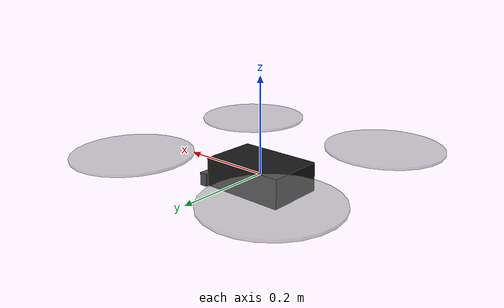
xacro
<?xml version="1.0"?>
<robot name="inv_quad" xmlns:xacro="http://www.ros.org/wiki/xacro">
  <xacro:include filename="$(find inv_description)/urdf/sensors.xacro"/>

  <xacro:property name="arm_length" value="0.25"/>
  <xacro:property name="prop_radius" value="0.12"/>
  <xacro:property name="body_mass" value="1.5"/>

  <link name="base_link">
    <visual>
      <geometry><box size="0.18 0.12 0.06"/></geometry>
      <material name="frame_black"><color rgba="0.1 0.1 0.1 1"/></material>
    </visual>
    <collision>
      <geometry><box size="0.55 0.55 0.12"/></geometry>
    </collision>
    <inertial>
      <mass value="${body_mass}"/>
      <inertia ixx="0.029" ixy="0" ixz="0" iyy="0.029" iyz="0" izz="0.055"/>
    </inertial>
  </link>

  <!-- Rotor discs, Quad-X numbering as in ArduPilot (1 front-right, 2 rear-left, 3 front-left, 4 rear-right). -->
  <xacro:macro name="rotor" params="name x y">
    <link name="${name}">
      <visual>
        <geometry><cylinder radius="${prop_radius}" length="0.005"/></geometry>
        <material name="prop_grey"><color rgba="0.6 0.6 0.6 0.5"/></material>
      </visual>
    </link>
    <joint name="${name}_joint" type="fixed">
      <parent link="base_link"/>
      <child link="${name}"/>
      <origin xyz="${x} ${y} 0.05" rpy="0 0 0"/>
    </joint>
  </xacro:macro>
  <xacro:property name="arm_xy" value="${arm_length * 0.70710678}"/>
  <xacro:rotor name="rotor_1" x="${arm_xy}" y="${-arm_xy}"/>
  <xacro:rotor name="rotor_2" x="${-arm_xy}" y="${arm_xy}"/>
  <xacro:rotor name="rotor_3" x="${arm_xy}" y="${arm_xy}"/>
  <xacro:rotor name="rotor_4" x="${-arm_xy}" y="${-arm_xy}"/>

  <!-- Flight controller IMU, at the body origin. -->
  <link name="fc_imu_link"/>
  <joint name="fc_imu_joint" type="fixed">
    <parent link="base_link"/>
    <child link="fc_imu_link"/>
    <origin xyz="0 0 0" rpy="0 0 0"/>
  </joint>

  <xacro:inv_sensors parent="base_link"/>
</robot>

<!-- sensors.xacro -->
<robot xmlns:xacro="http://www.ros.org/wiki/xacro">

  <!-- Stereo/depth/IMU camera module, front-mounted, looking forward. -->
  <xacro:property name="camera_x" value="0.12"/>
  <xacro:property name="camera_y" value="0.0"/>
  <xacro:property name="camera_z" value="-0.03"/>
  <xacro:property name="camera_pitch" value="0.0"/>
  <!-- Distance between the two global-shutter imagers (OAK-D Lite: 75 mm). -->
  <xacro:property name="stereo_baseline" value="0.075"/>
  <!-- RGB (label) imager offset from the module centre, along camera_link y: it sits centrally. -->
  <xacro:property name="color_y" value="0.0"/>

  <!-- Downward rangefinder and optical-flow sensor: simulated, not on the parts list yet. -->
  <xacro:property name="rangefinder_x" value="0.0"/>
  <xacro:property name="rangefinder_y" value="0.0"/>
  <xacro:property name="rangefinder_z" value="-0.06"/>
  <xacro:property name="flow_x" value="0.0"/>
  <xacro:property name="flow_y" value="0.05"/>
  <xacro:property name="flow_z" value="-0.06"/>

  <xacro:macro name="optical_frame" params="name parent">
    <link name="${name}"/>
    <joint name="${name}_joint" type="fixed">
      <parent link="${parent}"/>
      <child link="${name}"/>
      <origin xyz="0 0 0" rpy="${-pi/2} 0 ${-pi/2}"/>
    </joint>
  </xacro:macro>

  <xacro:macro name="fixed_link" params="name parent xyz rpy">
    <link name="${name}"/>
    <joint name="${name}_joint" type="fixed">
      <parent link="${parent}"/>
      <child link="${name}"/>
      <origin xyz="${xyz}" rpy="${rpy}"/>
    </joint>
  </xacro:macro>

  <xacro:macro name="inv_sensors" params="parent">
    <!-- Camera module body -->
    <link name="camera_link">
      <visual>
        <geometry><box size="0.0175 0.091 0.028"/></geometry>
        <material name="camera_grey"><color rgba="0.3 0.3 0.3 1"/></material>
      </visual>
    </link>
    <joint name="camera_link_joint" type="fixed">
      <parent link="${parent}"/>
      <child link="camera_link"/>
      <origin xyz="${camera_x} ${camera_y} ${camera_z}" rpy="0 ${camera_pitch} 0"/>
    </joint>

    <!-- Stereo pair (VSLAM input). Depth is registered to the left imager. -->
    <xacro:fixed_link name="camera_left" parent="camera_link" xyz="0 ${stereo_baseline/2} 0" rpy="0 0 0"/>
    <xacro:fixed_link name="camera_right" parent="camera_link" xyz="0 ${-stereo_baseline/2} 0" rpy="0 0 0"/>
    <xacro:optical_frame name="camera_left_optical_frame" parent="camera_left"/>
    <xacro:optical_frame name="camera_right_optical_frame" parent="camera_right"/>
    <xacro:fixed_link name="camera_depth" parent="camera_left" xyz="0 0 0" rpy="0 0 0"/>
    <xacro:optical_frame name="camera_depth_optical_frame" parent="camera_depth"/>

    <!-- RGB label camera (barcode/QR/AprilTag decoding). -->
    <xacro:fixed_link name="camera_color" parent="camera_link" xyz="0 ${color_y} 0" rpy="0 0 0"/>
    <xacro:optical_frame name="camera_color_optical_frame" parent="camera_color"/>

    <!-- Camera module IMU (hardware-synced with the imagers). -->
    <xacro:fixed_link name="camera_imu" parent="camera_link" xyz="0 0 0" rpy="0 0 0"/>
    <xacro:optical_frame name="camera_imu_optical_frame" parent="camera_imu"/>

    <!-- Downward-looking range sensors: +x points at the floor. -->
    <xacro:fixed_link name="rangefinder_link" parent="${parent}"
                      xyz="${rangefinder_x} ${rangefinder_y} ${rangefinder_z}" rpy="0 ${pi/2} 0"/>
    <xacro:fixed_link name="flow_link" parent="${parent}"
                      xyz="${flow_x} ${flow_y} ${flow_z}" rpy="0 ${pi/2} 0"/>
  </xacro:macro>
</robot>
